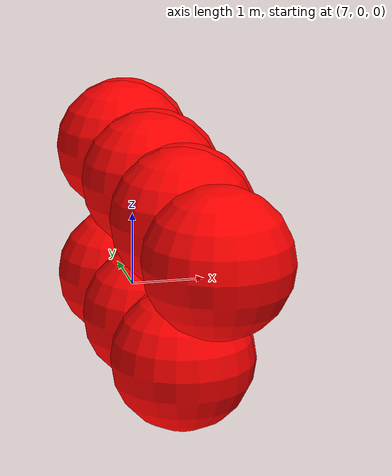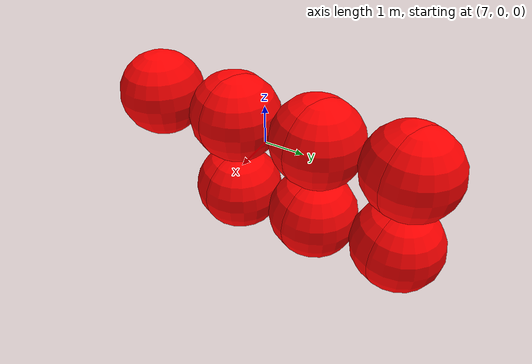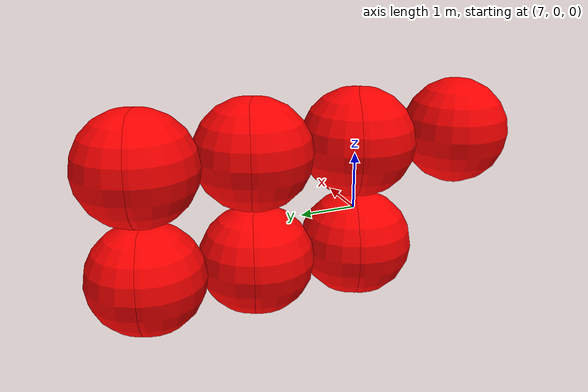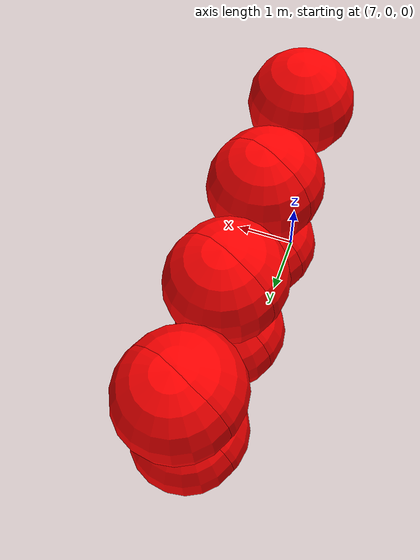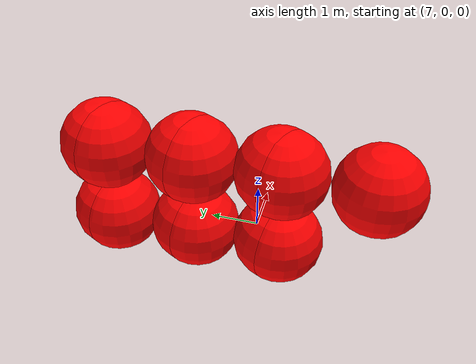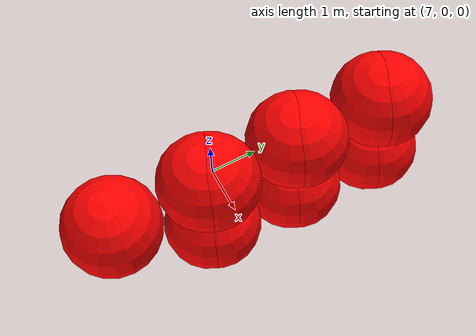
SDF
<sdf version="1.8">
 <world name="3d_world">
  <model name="obstacle_5" canonical_link="obstacle">
   <static>true</static>
   <pose relative_to="world">7.66 -0.31 -1.00 0 0 0</pose>
   <link name="obstacle">
    <pose relative_to="__model__">0.0 0 0.0 0 0 0</pose>
    <visual name="visual">
     <geometry><sphere><radius>1.00</radius></sphere></geometry>
     <material>
      <ambient>1.0 0.0 0.0 1</ambient>
      <diffuse>1.0 0.0 0.0 1</diffuse>
      <specular>1.0 0.0 0.0 1</specular>
     </material>
    </visual>
    <collision name="collision"><geometry><sphere><radius>1.00</radius></sphere></geometry></collision>
    <enable_gravity>false</enable_gravity>
   </link>
   <plugin filename="ignition-gazebo-velocity-control-system" name="ignition::gazebo::systems::VelocityControl">
    <initial_linear>0.00 0.00 0.00</initial_linear>
    <initial_angular>0 0 0</initial_angular>
   </plugin>
   <plugin filename="ignition-gazebo-odometry-publisher-system" name="ignition::gazebo::systems::OdometryPublisher">
    <dimensions>3</dimensions>
   </plugin>
  </model>
  <model name="obstacle_6" canonical_link="obstacle">
   <static>true</static>
   <pose relative_to="world">7.66 1.69 -1.00 0 0 0</pose>
   <link name="obstacle">
    <pose relative_to="__model__">0.0 0 0.0 0 0 0</pose>
    <visual name="visual">
     <geometry><sphere><radius>1.00</radius></sphere></geometry>
     <material>
      <ambient>1.0 0.0 0.0 1</ambient>
      <diffuse>1.0 0.0 0.0 1</diffuse>
      <specular>1.0 0.0 0.0 1</specular>
     </material>
    </visual>
    <collision name="collision"><geometry><sphere><radius>1.00</radius></sphere></geometry></collision>
    <enable_gravity>false</enable_gravity>
   </link>
   <plugin filename="ignition-gazebo-velocity-control-system" name="ignition::gazebo::systems::VelocityControl">
    <initial_linear>0.00 0.00 0.00</initial_linear>
    <initial_angular>0 0 0</initial_angular>
   </plugin>
   <plugin filename="ignition-gazebo-odometry-publisher-system" name="ignition::gazebo::systems::OdometryPublisher">
    <dimensions>3</dimensions>
   </plugin>
  </model>
  <model name="obstacle_7" canonical_link="obstacle">
   <static>true</static>
   <pose relative_to="world">7.66 3.69 -1.00 0 0 0</pose>
   <link name="obstacle">
    <pose relative_to="__model__">0.0 0 0.0 0 0 0</pose>
    <visual name="visual">
     <geometry><sphere><radius>1.00</radius></sphere></geometry>
     <material>
      <ambient>1.0 0.0 0.0 1</ambient>
      <diffuse>1.0 0.0 0.0 1</diffuse>
      <specular>1.0 0.0 0.0 1</specular>
     </material>
    </visual>
    <collision name="collision"><geometry><sphere><radius>1.00</radius></sphere></geometry></collision>
    <enable_gravity>false</enable_gravity>
   </link>
   <plugin filename="ignition-gazebo-velocity-control-system" name="ignition::gazebo::systems::VelocityControl">
    <initial_linear>0.00 0.00 0.00</initial_linear>
    <initial_angular>0 0 0</initial_angular>
   </plugin>
   <plugin filename="ignition-gazebo-odometry-publisher-system" name="ignition::gazebo::systems::OdometryPublisher">
    <dimensions>3</dimensions>
   </plugin>
  </model>
  <model name="obstacle_8" canonical_link="obstacle">
   <static>true</static>
   <pose relative_to="world">7.66 -0.31 1.00 0 0 0</pose>
   <link name="obstacle">
    <pose relative_to="__model__">0.0 0 0.0 0 0 0</pose>
    <visual name="visual">
     <geometry><sphere><radius>1.00</radius></sphere></geometry>
     <material>
      <ambient>1.0 0.0 0.0 1</ambient>
      <diffuse>1.0 0.0 0.0 1</diffuse>
      <specular>1.0 0.0 0.0 1</specular>
     </material>
    </visual>
    <collision name="collision"><geometry><sphere><radius>1.00</radius></sphere></geometry></collision>
    <enable_gravity>false</enable_gravity>
   </link>
   <plugin filename="ignition-gazebo-velocity-control-system" name="ignition::gazebo::systems::VelocityControl">
    <initial_linear>0.00 0.00 0.00</initial_linear>
    <initial_angular>0 0 0</initial_angular>
   </plugin>
   <plugin filename="ignition-gazebo-odometry-publisher-system" name="ignition::gazebo::systems::OdometryPublisher">
    <dimensions>3</dimensions>
   </plugin>
  </model>
  <model name="obstacle_9" canonical_link="obstacle">
   <static>true</static>
   <pose relative_to="world">7.66 1.69 1.00 0 0 0</pose>
   <link name="obstacle">
    <pose relative_to="__model__">0.0 0 0.0 0 0 0</pose>
    <visual name="visual">
     <geometry><sphere><radius>1.00</radius></sphere></geometry>
     <material>
      <ambient>1.0 0.0 0.0 1</ambient>
      <diffuse>1.0 0.0 0.0 1</diffuse>
      <specular>1.0 0.0 0.0 1</specular>
     </material>
    </visual>
    <collision name="collision"><geometry><sphere><radius>1.00</radius></sphere></geometry></collision>
    <enable_gravity>false</enable_gravity>
   </link>
   <plugin filename="ignition-gazebo-velocity-control-system" name="ignition::gazebo::systems::VelocityControl">
    <initial_linear>0.00 0.00 0.00</initial_linear>
    <initial_angular>0 0 0</initial_angular>
   </plugin>
   <plugin filename="ignition-gazebo-odometry-publisher-system" name="ignition::gazebo::systems::OdometryPublisher">
    <dimensions>3</dimensions>
   </plugin>
  </model>
  <model name="obstacle_10" canonical_link="obstacle">
   <static>true</static>
   <pose relative_to="world">7.66 3.69 1.00 0 0 0</pose>
   <link name="obstacle">
    <pose relative_to="__model__">0.0 0 0.0 0 0 0</pose>
    <visual name="visual">
     <geometry><sphere><radius>1.00</radius></sphere></geometry>
     <material>
      <ambient>1.0 0.0 0.0 1</ambient>
      <diffuse>1.0 0.0 0.0 1</diffuse>
      <specular>1.0 0.0 0.0 1</specular>
     </material>
    </visual>
    <collision name="collision"><geometry><sphere><radius>1.00</radius></sphere></geometry></collision>
    <enable_gravity>false</enable_gravity>
   </link>
   <plugin filename="ignition-gazebo-velocity-control-system" name="ignition::gazebo::systems::VelocityControl">
    <initial_linear>0.00 0.00 0.00</initial_linear>
    <initial_angular>0 0 0</initial_angular>
   </plugin>
   <plugin filename="ignition-gazebo-odometry-publisher-system" name="ignition::gazebo::systems::OdometryPublisher">
    <dimensions>3</dimensions>
   </plugin>
  </model>
  <model name="obstacle_12" canonical_link="obstacle">
   <static>true</static>
   <pose relative_to="world">7.61 -0.42 -1.00 0 0 0</pose>
   <link name="obstacle">
    <pose relative_to="__model__">0.0 0 0.0 0 0 0</pose>
    <visual name="visual">
     <geometry><sphere><radius>1.00</radius></sphere></geometry>
     <material>
      <ambient>1.0 0.0 0.0 1</ambient>
      <diffuse>1.0 0.0 0.0 1</diffuse>
      <specular>1.0 0.0 0.0 1</specular>
     </material>
    </visual>
    <collision name="collision"><geometry><sphere><radius>1.00</radius></sphere></geometry></collision>
    <enable_gravity>false</enable_gravity>
   </link>
   <plugin filename="ignition-gazebo-velocity-control-system" name="ignition::gazebo::systems::VelocityControl">
    <initial_linear>0.00 0.00 0.00</initial_linear>
    <initial_angular>0 0 0</initial_angular>
   </plugin>
   <plugin filename="ignition-gazebo-odometry-publisher-system" name="ignition::gazebo::systems::OdometryPublisher">
    <dimensions>3</dimensions>
   </plugin>
  </model>
  <model name="obstacle_13" canonical_link="obstacle">
   <static>true</static>
   <pose relative_to="world">7.61 1.58 -1.00 0 0 0</pose>
   <link name="obstacle">
    <pose relative_to="__model__">0.0 0 0.0 0 0 0</pose>
    <visual name="visual">
     <geometry><sphere><radius>1.00</radius></sphere></geometry>
     <material>
      <ambient>1.0 0.0 0.0 1</ambient>
      <diffuse>1.0 0.0 0.0 1</diffuse>
      <specular>1.0 0.0 0.0 1</specular>
     </material>
    </visual>
    <collision name="collision"><geometry><sphere><radius>1.00</radius></sphere></geometry></collision>
    <enable_gravity>false</enable_gravity>
   </link>
   <plugin filename="ignition-gazebo-velocity-control-system" name="ignition::gazebo::systems::VelocityControl">
    <initial_linear>0.00 0.00 0.00</initial_linear>
    <initial_angular>0 0 0</initial_angular>
   </plugin>
   <plugin filename="ignition-gazebo-odometry-publisher-system" name="ignition::gazebo::systems::OdometryPublisher">
    <dimensions>3</dimensions>
   </plugin>
  </model>
  <model name="obstacle_14" canonical_link="obstacle">
   <static>true</static>
   <pose relative_to="world">7.61 3.58 -1.00 0 0 0</pose>
   <link name="obstacle">
    <pose relative_to="__model__">0.0 0 0.0 0 0 0</pose>
    <visual name="visual">
     <geometry><sphere><radius>1.00</radius></sphere></geometry>
     <material>
      <ambient>1.0 0.0 0.0 1</ambient>
      <diffuse>1.0 0.0 0.0 1</diffuse>
      <specular>1.0 0.0 0.0 1</specular>
     </material>
    </visual>
    <collision name="collision"><geometry><sphere><radius>1.00</radius></sphere></geometry></collision>
    <enable_gravity>false</enable_gravity>
   </link>
   <plugin filename="ignition-gazebo-velocity-control-system" name="ignition::gazebo::systems::VelocityControl">
    <initial_linear>0.00 0.00 0.00</initial_linear>
    <initial_angular>0 0 0</initial_angular>
   </plugin>
   <plugin filename="ignition-gazebo-odometry-publisher-system" name="ignition::gazebo::systems::OdometryPublisher">
    <dimensions>3</dimensions>
   </plugin>
  </model>
  <model name="obstacle_15" canonical_link="obstacle">
   <static>true</static>
   <pose relative_to="world">7.61 -2.42 1.00 0 0 0</pose>
   <link name="obstacle">
    <pose relative_to="__model__">0.0 0 0.0 0 0 0</pose>
    <visual name="visual">
     <geometry><sphere><radius>1.00</radius></sphere></geometry>
     <material>
      <ambient>1.0 0.0 0.0 1</ambient>
      <diffuse>1.0 0.0 0.0 1</diffuse>
      <specular>1.0 0.0 0.0 1</specular>
     </material>
    </visual>
    <collision name="collision"><geometry><sphere><radius>1.00</radius></sphere></geometry></collision>
    <enable_gravity>false</enable_gravity>
   </link>
   <plugin filename="ignition-gazebo-velocity-control-system" name="ignition::gazebo::systems::VelocityControl">
    <initial_linear>0.00 0.00 0.00</initial_linear>
    <initial_angular>0 0 0</initial_angular>
   </plugin>
   <plugin filename="ignition-gazebo-odometry-publisher-system" name="ignition::gazebo::systems::OdometryPublisher">
    <dimensions>3</dimensions>
   </plugin>
  </model>
  <model name="obstacle_16" canonical_link="obstacle">
   <static>true</static>
   <pose relative_to="world">7.61 -0.42 1.00 0 0 0</pose>
   <link name="obstacle">
    <pose relative_to="__model__">0.0 0 0.0 0 0 0</pose>
    <visual name="visual">
     <geometry><sphere><radius>1.00</radius></sphere></geometry>
     <material>
      <ambient>1.0 0.0 0.0 1</ambient>
      <diffuse>1.0 0.0 0.0 1</diffuse>
      <specular>1.0 0.0 0.0 1</specular>
     </material>
    </visual>
    <collision name="collision"><geometry><sphere><radius>1.00</radius></sphere></geometry></collision>
    <enable_gravity>false</enable_gravity>
   </link>
   <plugin filename="ignition-gazebo-velocity-control-system" name="ignition::gazebo::systems::VelocityControl">
    <initial_linear>0.00 0.00 0.00</initial_linear>
    <initial_angular>0 0 0</initial_angular>
   </plugin>
   <plugin filename="ignition-gazebo-odometry-publisher-system" name="ignition::gazebo::systems::OdometryPublisher">
    <dimensions>3</dimensions>
   </plugin>
  </model>
  <model name="obstacle_17" canonical_link="obstacle">
   <static>true</static>
   <pose relative_to="world">7.61 1.58 1.00 0 0 0</pose>
   <link name="obstacle">
    <pose relative_to="__model__">0.0 0 0.0 0 0 0</pose>
    <visual name="visual">
     <geometry><sphere><radius>1.00</radius></sphere></geometry>
     <material>
      <ambient>1.0 0.0 0.0 1</ambient>
      <diffuse>1.0 0.0 0.0 1</diffuse>
      <specular>1.0 0.0 0.0 1</specular>
     </material>
    </visual>
    <collision name="collision"><geometry><sphere><radius>1.00</radius></sphere></geometry></collision>
    <enable_gravity>false</enable_gravity>
   </link>
   <plugin filename="ignition-gazebo-velocity-control-system" name="ignition::gazebo::systems::VelocityControl">
    <initial_linear>0.00 0.00 0.00</initial_linear>
    <initial_angular>0 0 0</initial_angular>
   </plugin>
   <plugin filename="ignition-gazebo-odometry-publisher-system" name="ignition::gazebo::systems::OdometryPublisher">
    <dimensions>3</dimensions>
   </plugin>
  </model>
  <model name="obstacle_18" canonical_link="obstacle">
   <static>true</static>
   <pose relative_to="world">7.61 3.58 1.00 0 0 0</pose>
   <link name="obstacle">
    <pose relative_to="__model__">0.0 0 0.0 0 0 0</pose>
    <visual name="visual">
     <geometry><sphere><radius>1.00</radius></sphere></geometry>
     <material>
      <ambient>1.0 0.0 0.0 1</ambient>
      <diffuse>1.0 0.0 0.0 1</diffuse>
      <specular>1.0 0.0 0.0 1</specular>
     </material>
    </visual>
    <collision name="collision"><geometry><sphere><radius>1.00</radius></sphere></geometry></collision>
    <enable_gravity>false</enable_gravity>
   </link>
   <plugin filename="ignition-gazebo-velocity-control-system" name="ignition::gazebo::systems::VelocityControl">
    <initial_linear>0.00 0.00 0.00</initial_linear>
    <initial_angular>0 0 0</initial_angular>
   </plugin>
   <plugin filename="ignition-gazebo-odometry-publisher-system" name="ignition::gazebo::systems::OdometryPublisher">
    <dimensions>3</dimensions>
   </plugin>
  </model>
 </world>
</sdf>
